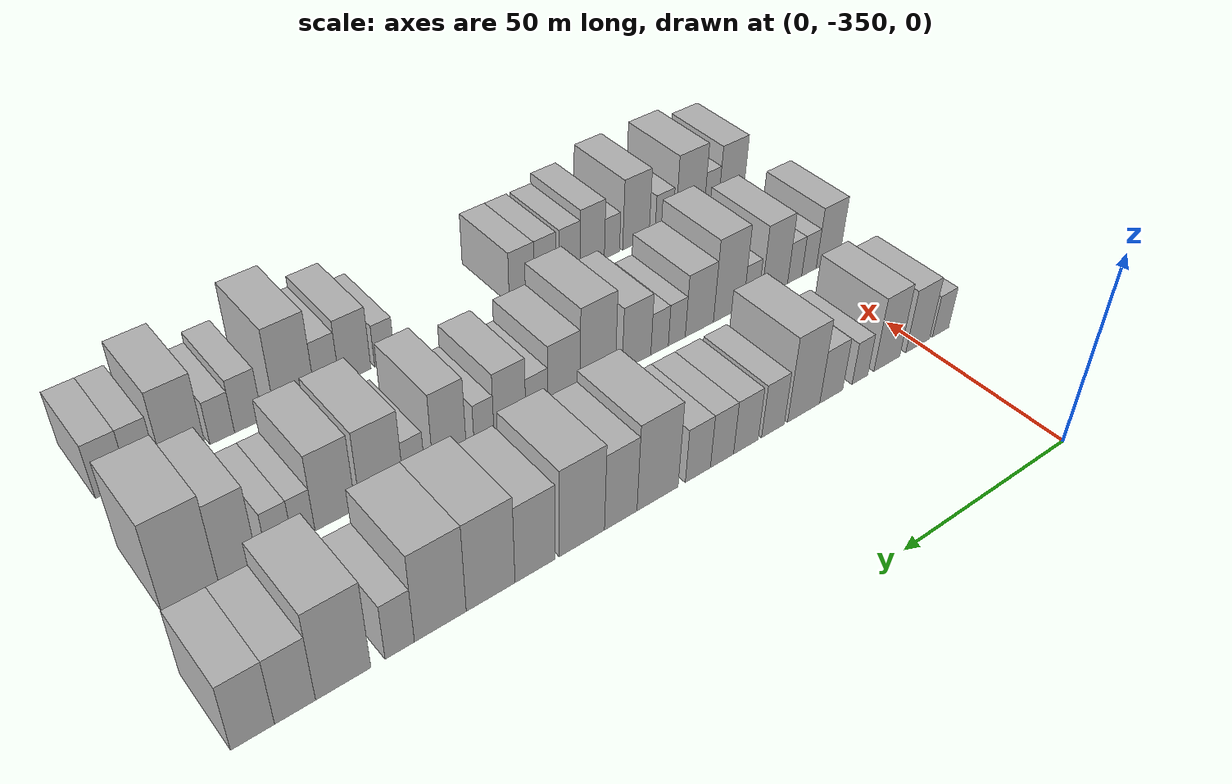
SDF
<sdf version="1.6">
 <world name="default">
  <model name="building_1">
   <static>1</static>
   <pose>50.0000 -357.1473 0 0.000000 0.000000 0.000000</pose>
   <link name="link">
    <pose>0 0 6.00 0 0 0</pose>
    <collision name="collision"><geometry><box><size>20.0000 5.7055 12.0000</size></box></geometry></collision>
    <visual name="visual">
     <cast_shadows>0</cast_shadows>
     <geometry><box><size>20.0000 5.7055 12.0000</size></box></geometry>
     <material>
      <script>
       <uri>model://HANNAS_wall/materials/scripts</uri>
       <uri>model://HANNAS_wall/materials/textures</uri>
       <name>vrc/HANNAS_wall</name>
      </script>
     </material>
    </visual>
   </link>
  </model>
  <model name="building_2">
   <static>1</static>
   <pose>50.0000 -349.2135 0 0.000000 0.000000 0.000000</pose>
   <link name="link">
    <pose>0 0 9.00 0 0 0</pose>
    <collision name="collision"><geometry><box><size>20.0000 8.1621 18.0000</size></box></geometry></collision>
    <visual name="visual">
     <cast_shadows>0</cast_shadows>
     <geometry><box><size>20.0000 8.1621 18.0000</size></box></geometry>
     <material>
      <script>
       <uri>model://HANNAS_wall/materials/scripts</uri>
       <uri>model://HANNAS_wall/materials/textures</uri>
       <name>vrc/HANNAS_wall</name>
      </script>
     </material>
    </visual>
   </link>
  </model>
  <model name="building_3">
   <static>1</static>
   <pose>50.0000 -338.8269 0 0.000000 0.000000 0.000000</pose>
   <link name="link">
    <pose>0 0 10.50 0 0 0</pose>
    <collision name="collision"><geometry><box><size>20.0000 8.6111 21.0000</size></box></geometry></collision>
    <visual name="visual">
     <cast_shadows>0</cast_shadows>
     <geometry><box><size>20.0000 8.6111 21.0000</size></box></geometry>
     <material>
      <script>
       <uri>model://HANNAS_wall/materials/scripts</uri>
       <uri>model://HANNAS_wall/materials/textures</uri>
       <name>vrc/HANNAS_wall</name>
      </script>
     </material>
    </visual>
   </link>
  </model>
  <model name="building_4">
   <static>1</static>
   <pose>50.0000 -329.9672 0 0.000000 0.000000 0.000000</pose>
   <link name="link">
    <pose>0 0 6.00 0 0 0</pose>
    <collision name="collision"><geometry><box><size>20.0000 5.1084 12.0000</size></box></geometry></collision>
    <visual name="visual">
     <cast_shadows>0</cast_shadows>
     <geometry><box><size>20.0000 5.1084 12.0000</size></box></geometry>
     <material>
      <script>
       <uri>model://HANNAS_wall/materials/scripts</uri>
       <uri>model://HANNAS_wall/materials/textures</uri>
       <name>vrc/HANNAS_wall</name>
      </script>
     </material>
    </visual>
   </link>
  </model>
  <model name="building_5">
   <static>1</static>
   <pose>50.0000 -320.7984 0 0.000000 0.000000 0.000000</pose>
   <link name="link">
    <pose>0 0 7.50 0 0 0</pose>
    <collision name="collision"><geometry><box><size>20.0000 7.2293 15.0000</size></box></geometry></collision>
    <visual name="visual">
     <cast_shadows>0</cast_shadows>
     <geometry><box><size>20.0000 7.2293 15.0000</size></box></geometry>
     <material>
      <script>
       <uri>model://HANNAS_wall/materials/scripts</uri>
       <uri>model://HANNAS_wall/materials/textures</uri>
       <name>vrc/HANNAS_wall</name>
      </script>
     </material>
    </visual>
   </link>
  </model>
  <model name="building_6">
   <static>1</static>
   <pose>50.0000 -312.2470 0 0.000000 0.000000 0.000000</pose>
   <link name="link">
    <pose>0 0 12.00 0 0 0</pose>
    <collision name="collision"><geometry><box><size>20.0000 9.8735 24.0000</size></box></geometry></collision>
    <visual name="visual">
     <cast_shadows>0</cast_shadows>
     <geometry><box><size>20.0000 9.8735 24.0000</size></box></geometry>
     <material>
      <script>
       <uri>model://HANNAS_wall/materials/scripts</uri>
       <uri>model://HANNAS_wall/materials/textures</uri>
       <name>vrc/HANNAS_wall</name>
      </script>
     </material>
    </visual>
   </link>
  </model>
  <model name="building_7">
   <static>1</static>
   <pose>50.0000 -302.9227 0 0.000000 0.000000 0.000000</pose>
   <link name="link">
    <pose>0 0 7.50 0 0 0</pose>
    <collision name="collision"><geometry><box><size>20.0000 6.7750 15.0000</size></box></geometry></collision>
    <visual name="visual">
     <cast_shadows>0</cast_shadows>
     <geometry><box><size>20.0000 6.7750 15.0000</size></box></geometry>
     <material>
      <script>
       <uri>model://HANNAS_wall/materials/scripts</uri>
       <uri>model://HANNAS_wall/materials/textures</uri>
       <name>vrc/HANNAS_wall</name>
      </script>
     </material>
    </visual>
   </link>
  </model>
  <model name="building_8">
   <static>1</static>
   <pose>50.0000 -294.9445 0 0.000000 0.000000 0.000000</pose>
   <link name="link">
    <pose>0 0 7.50 0 0 0</pose>
    <collision name="collision"><geometry><box><size>20.0000 7.1815 15.0000</size></box></geometry></collision>
    <visual name="visual">
     <cast_shadows>0</cast_shadows>
     <geometry><box><size>20.0000 7.1815 15.0000</size></box></geometry>
     <material>
      <script>
       <uri>model://HANNAS_wall/materials/scripts</uri>
       <uri>model://HANNAS_wall/materials/textures</uri>
       <name>vrc/HANNAS_wall</name>
      </script>
     </material>
    </visual>
   </link>
  </model>
  <model name="building_9">
   <static>1</static>
   <pose>50.0000 -288.0629 0 0.000000 0.000000 0.000000</pose>
   <link name="link">
    <pose>0 0 7.50 0 0 0</pose>
    <collision name="collision"><geometry><box><size>20.0000 6.5817 15.0000</size></box></geometry></collision>
    <visual name="visual">
     <cast_shadows>0</cast_shadows>
     <geometry><box><size>20.0000 6.5817 15.0000</size></box></geometry>
     <material>
      <script>
       <uri>model://HANNAS_wall/materials/scripts</uri>
       <uri>model://HANNAS_wall/materials/textures</uri>
       <name>vrc/HANNAS_wall</name>
      </script>
     </material>
    </visual>
   </link>
  </model>
  <model name="building_10">
   <static>1</static>
   <pose>50.0000 -281.2849 0 0.000000 0.000000 0.000000</pose>
   <link name="link">
    <pose>0 0 7.50 0 0 0</pose>
    <collision name="collision"><geometry><box><size>20.0000 6.9745 15.0000</size></box></geometry></collision>
    <visual name="visual">
     <cast_shadows>0</cast_shadows>
     <geometry><box><size>20.0000 6.9745 15.0000</size></box></geometry>
     <material>
      <script>
       <uri>model://HANNAS_wall/materials/scripts</uri>
       <uri>model://HANNAS_wall/materials/textures</uri>
       <name>vrc/HANNAS_wall</name>
      </script>
     </material>
    </visual>
   </link>
  </model>
  <model name="building_11">
   <static>1</static>
   <pose>50.0000 -270.2725 0 0.000000 0.000000 0.000000</pose>
   <link name="link">
    <pose>0 0 12.00 0 0 0</pose>
    <collision name="collision"><geometry><box><size>20.0000 11.0504 24.0000</size></box></geometry></collision>
    <visual name="visual">
     <cast_shadows>0</cast_shadows>
     <geometry><box><size>20.0000 11.0504 24.0000</size></box></geometry>
     <material>
      <script>
       <uri>model://HANNAS_wall/materials/scripts</uri>
       <uri>model://HANNAS_wall/materials/textures</uri>
       <name>vrc/HANNAS_wall</name>
      </script>
     </material>
    </visual>
   </link>
  </model>
  <model name="building_12">
   <static>1</static>
   <pose>50.0000 -260.5234 0 0.000000 0.000000 0.000000</pose>
   <link name="link">
    <pose>0 0 10.50 0 0 0</pose>
    <collision name="collision"><geometry><box><size>20.0000 8.4478 21.0000</size></box></geometry></collision>
    <visual name="visual">
     <cast_shadows>0</cast_shadows>
     <geometry><box><size>20.0000 8.4478 21.0000</size></box></geometry>
     <material>
      <script>
       <uri>model://HANNAS_wall/materials/scripts</uri>
       <uri>model://HANNAS_wall/materials/textures</uri>
       <name>vrc/HANNAS_wall</name>
      </script>
     </material>
    </visual>
   </link>
  </model>
  <model name="building_13">
   <static>1</static>
   <pose>50.0000 -250.6275 0 0.000000 0.000000 0.000000</pose>
   <link name="link">
    <pose>0 0 12.00 0 0 0</pose>
    <collision name="collision"><geometry><box><size>20.0000 11.3440 24.0000</size></box></geometry></collision>
    <visual name="visual">
     <cast_shadows>0</cast_shadows>
     <geometry><box><size>20.0000 11.3440 24.0000</size></box></geometry>
     <material>
      <script>
       <uri>model://HANNAS_wall/materials/scripts</uri>
       <uri>model://HANNAS_wall/materials/textures</uri>
       <name>vrc/HANNAS_wall</name>
      </script>
     </material>
    </visual>
   </link>
  </model>
  <model name="building_14">
   <static>1</static>
   <pose>50.0000 -239.0872 0 0.000000 0.000000 0.000000</pose>
   <link name="link">
    <pose>0 0 10.50 0 0 0</pose>
    <collision name="collision"><geometry><box><size>20.0000 9.7365 21.0000</size></box></geometry></collision>
    <visual name="visual">
     <cast_shadows>0</cast_shadows>
     <geometry><box><size>20.0000 9.7365 21.0000</size></box></geometry>
     <material>
      <script>
       <uri>model://HANNAS_wall/materials/scripts</uri>
       <uri>model://HANNAS_wall/materials/textures</uri>
       <name>vrc/HANNAS_wall</name>
      </script>
     </material>
    </visual>
   </link>
  </model>
  <model name="building_15">
   <static>1</static>
   <pose>50.0000 -228.5402 0 0.000000 0.000000 0.000000</pose>
   <link name="link">
    <pose>0 0 12.00 0 0 0</pose>
    <collision name="collision"><geometry><box><size>20.0000 11.3576 24.0000</size></box></geometry></collision>
    <visual name="visual">
     <cast_shadows>0</cast_shadows>
     <geometry><box><size>20.0000 11.3576 24.0000</size></box></geometry>
     <material>
      <script>
       <uri>model://HANNAS_wall/materials/scripts</uri>
       <uri>model://HANNAS_wall/materials/textures</uri>
       <name>vrc/HANNAS_wall</name>
      </script>
     </material>
    </visual>
   </link>
  </model>
  <model name="building_16">
   <static>1</static>
   <pose>50.0000 -217.0679 0 0.000000 0.000000 0.000000</pose>
   <link name="link">
    <pose>0 0 12.00 0 0 0</pose>
    <collision name="collision"><geometry><box><size>20.0000 11.5871 24.0000</size></box></geometry></collision>
    <visual name="visual">
     <cast_shadows>0</cast_shadows>
     <geometry><box><size>20.0000 11.5871 24.0000</size></box></geometry>
     <material>
      <script>
       <uri>model://HANNAS_wall/materials/scripts</uri>
       <uri>model://HANNAS_wall/materials/textures</uri>
       <name>vrc/HANNAS_wall</name>
      </script>
     </material>
    </visual>
   </link>
  </model>
  <model name="building_17">
   <static>1</static>
   <pose>50.0000 -208.0867 0 0.000000 0.000000 0.000000</pose>
   <link name="link">
    <pose>0 0 7.50 0 0 0</pose>
    <collision name="collision"><geometry><box><size>20.0000 6.3753 15.0000</size></box></geometry></collision>
    <visual name="visual">
     <cast_shadows>0</cast_shadows>
     <geometry><box><size>20.0000 6.3753 15.0000</size></box></geometry>
     <material>
      <script>
       <uri>model://HANNAS_wall/materials/scripts</uri>
       <uri>model://HANNAS_wall/materials/textures</uri>
       <name>vrc/HANNAS_wall</name>
      </script>
     </material>
    </visual>
   </link>
  </model>
  <model name="building_18">
   <static>1</static>
   <pose>50.0000 -196.1646 0 0.000000 0.000000 0.000000</pose>
   <link name="link">
    <pose>0 0 12.00 0 0 0</pose>
    <collision name="collision"><geometry><box><size>20.0000 11.4688 24.0000</size></box></geometry></collision>
    <visual name="visual">
     <cast_shadows>0</cast_shadows>
     <geometry><box><size>20.0000 11.4688 24.0000</size></box></geometry>
     <material>
      <script>
       <uri>model://HANNAS_wall/materials/scripts</uri>
       <uri>model://HANNAS_wall/materials/textures</uri>
       <name>vrc/HANNAS_wall</name>
      </script>
     </material>
    </visual>
   </link>
  </model>
  <model name="building_19">
   <static>1</static>
   <pose>50.0000 -186.3429 0 0.000000 0.000000 0.000000</pose>
   <link name="link">
    <pose>0 0 9.00 0 0 0</pose>
    <collision name="collision"><geometry><box><size>20.0000 8.1747 18.0000</size></box></geometry></collision>
    <visual name="visual">
     <cast_shadows>0</cast_shadows>
     <geometry><box><size>20.0000 8.1747 18.0000</size></box></geometry>
     <material>
      <script>
       <uri>model://HANNAS_wall/materials/scripts</uri>
       <uri>model://HANNAS_wall/materials/textures</uri>
       <name>vrc/HANNAS_wall</name>
      </script>
     </material>
    </visual>
   </link>
  </model>
  <model name="building_20">
   <static>1</static>
   <pose>50.0000 -177.9876 0 0.000000 0.000000 0.000000</pose>
   <link name="link">
    <pose>0 0 9.00 0 0 0</pose>
    <collision name="collision"><geometry><box><size>20.0000 8.5359 18.0000</size></box></geometry></collision>
    <visual name="visual">
     <cast_shadows>0</cast_shadows>
     <geometry><box><size>20.0000 8.5359 18.0000</size></box></geometry>
     <material>
      <script>
       <uri>model://HANNAS_wall/materials/scripts</uri>
       <uri>model://HANNAS_wall/materials/textures</uri>
       <name>vrc/HANNAS_wall</name>
      </script>
     </material>
    </visual>
   </link>
  </model>
  <model name="building_84">
   <static>1</static>
   <pose>85.0000 -355.8267 0 0.000000 0.000000 0.000000</pose>
   <link name="link">
    <pose>0 0 9.00 0 0 0</pose>
    <collision name="collision"><geometry><box><size>20.0000 8.3467 18.0000</size></box></geometry></collision>
    <visual name="visual">
     <cast_shadows>0</cast_shadows>
     <geometry><box><size>20.0000 8.3467 18.0000</size></box></geometry>
     <material>
      <script>
       <uri>model://HANNAS_wall/materials/scripts</uri>
       <uri>model://HANNAS_wall/materials/textures</uri>
       <name>vrc/HANNAS_wall</name>
      </script>
     </material>
    </visual>
   </link>
  </model>
  <model name="building_85">
   <static>1</static>
   <pose>85.0000 -349.1430 0 0.000000 0.000000 0.000000</pose>
   <link name="link">
    <pose>0 0 6.00 0 0 0</pose>
    <collision name="collision"><geometry><box><size>20.0000 5.0207 12.0000</size></box></geometry></collision>
    <visual name="visual">
     <cast_shadows>0</cast_shadows>
     <geometry><box><size>20.0000 5.0207 12.0000</size></box></geometry>
     <material>
      <script>
       <uri>model://HANNAS_wall/materials/scripts</uri>
       <uri>model://HANNAS_wall/materials/textures</uri>
       <name>vrc/HANNAS_wall</name>
      </script>
     </material>
    </visual>
   </link>
  </model>
  <model name="building_86">
   <static>1</static>
   <pose>85.0000 -344.2214 0 0.000000 0.000000 0.000000</pose>
   <link name="link">
    <pose>0 0 6.00 0 0 0</pose>
    <collision name="collision"><geometry><box><size>20.0000 4.8224 12.0000</size></box></geometry></collision>
    <visual name="visual">
     <cast_shadows>0</cast_shadows>
     <geometry><box><size>20.0000 4.8224 12.0000</size></box></geometry>
     <material>
      <script>
       <uri>model://HANNAS_wall/materials/scripts</uri>
       <uri>model://HANNAS_wall/materials/textures</uri>
       <name>vrc/HANNAS_wall</name>
      </script>
     </material>
    </visual>
   </link>
  </model>
  <model name="building_87">
   <static>1</static>
   <pose>85.0000 -337.4208 0 0.000000 0.000000 0.000000</pose>
   <link name="link">
    <pose>0 0 10.50 0 0 0</pose>
    <collision name="collision"><geometry><box><size>20.0000 8.7788 21.0000</size></box></geometry></collision>
    <visual name="visual">
     <cast_shadows>0</cast_shadows>
     <geometry><box><size>20.0000 8.7788 21.0000</size></box></geometry>
     <material>
      <script>
       <uri>model://HANNAS_wall/materials/scripts</uri>
       <uri>model://HANNAS_wall/materials/textures</uri>
       <name>vrc/HANNAS_wall</name>
      </script>
     </material>
    </visual>
   </link>
  </model>
  <model name="building_88">
   <static>1</static>
   <pose>85.0000 -329.5567 0 0.000000 0.000000 0.000000</pose>
   <link name="link">
    <pose>0 0 6.00 0 0 0</pose>
    <collision name="collision"><geometry><box><size>20.0000 4.9494 12.0000</size></box></geometry></collision>
    <visual name="visual">
     <cast_shadows>0</cast_shadows>
     <geometry><box><size>20.0000 4.9494 12.0000</size></box></geometry>
     <material>
      <script>
       <uri>model://HANNAS_wall/materials/scripts</uri>
       <uri>model://HANNAS_wall/materials/textures</uri>
       <name>vrc/HANNAS_wall</name>
      </script>
     </material>
    </visual>
   </link>
  </model>
  <model name="building_89">
   <static>1</static>
   <pose>85.0000 -322.2527 0 0.000000 0.000000 0.000000</pose>
   <link name="link">
    <pose>0 0 12.00 0 0 0</pose>
    <collision name="collision"><geometry><box><size>20.0000 9.6586 24.0000</size></box></geometry></collision>
    <visual name="visual">
     <cast_shadows>0</cast_shadows>
     <geometry><box><size>20.0000 9.6586 24.0000</size></box></geometry>
     <material>
      <script>
       <uri>model://HANNAS_wall/materials/scripts</uri>
       <uri>model://HANNAS_wall/materials/textures</uri>
       <name>vrc/HANNAS_wall</name>
      </script>
     </material>
    </visual>
   </link>
  </model>
  <model name="building_90">
   <static>1</static>
   <pose>85.0000 -313.0131 0 0.000000 0.000000 0.000000</pose>
   <link name="link">
    <pose>0 0 9.00 0 0 0</pose>
    <collision name="collision"><geometry><box><size>20.0000 8.8206 18.0000</size></box></geometry></collision>
    <visual name="visual">
     <cast_shadows>0</cast_shadows>
     <geometry><box><size>20.0000 8.8206 18.0000</size></box></geometry>
     <material>
      <script>
       <uri>model://HANNAS_wall/materials/scripts</uri>
       <uri>model://HANNAS_wall/materials/textures</uri>
       <name>vrc/HANNAS_wall</name>
      </script>
     </material>
    </visual>
   </link>
  </model>
  <model name="building_91">
   <static>1</static>
   <pose>85.0000 -305.9966 0 0.000000 0.000000 0.000000</pose>
   <link name="link">
    <pose>0 0 6.00 0 0 0</pose>
    <collision name="collision"><geometry><box><size>20.0000 5.2122 12.0000</size></box></geometry></collision>
    <visual name="visual">
     <cast_shadows>0</cast_shadows>
     <geometry><box><size>20.0000 5.2122 12.0000</size></box></geometry>
     <material>
      <script>
       <uri>model://HANNAS_wall/materials/scripts</uri>
       <uri>model://HANNAS_wall/materials/textures</uri>
       <name>vrc/HANNAS_wall</name>
      </script>
     </material>
    </visual>
   </link>
  </model>
  <model name="building_92">
   <static>1</static>
   <pose>85.0000 -300.7433 0 0.000000 0.000000 0.000000</pose>
   <link name="link">
    <pose>0 0 6.00 0 0 0</pose>
    <collision name="collision"><geometry><box><size>20.0000 5.2944 12.0000</size></box></geometry></collision>
    <visual name="visual">
     <cast_shadows>0</cast_shadows>
     <geometry><box><size>20.0000 5.2944 12.0000</size></box></geometry>
     <material>
      <script>
       <uri>model://HANNAS_wall/materials/scripts</uri>
       <uri>model://HANNAS_wall/materials/textures</uri>
       <name>vrc/HANNAS_wall</name>
      </script>
     </material>
    </visual>
   </link>
  </model>
  <model name="building_93">
   <static>1</static>
   <pose>85.0000 -293.8392 0 0.000000 0.000000 0.000000</pose>
   <link name="link">
    <pose>0 0 9.00 0 0 0</pose>
    <collision name="collision"><geometry><box><size>20.0000 8.5138 18.0000</size></box></geometry></collision>
    <visual name="visual">
     <cast_shadows>0</cast_shadows>
     <geometry><box><size>20.0000 8.5138 18.0000</size></box></geometry>
     <material>
      <script>
       <uri>model://HANNAS_wall/materials/scripts</uri>
       <uri>model://HANNAS_wall/materials/textures</uri>
       <name>vrc/HANNAS_wall</name>
      </script>
     </material>
    </visual>
   </link>
  </model>
  <model name="building_94">
   <static>1</static>
   <pose>85.0000 -282.5141 0 0.000000 0.000000 0.000000</pose>
   <link name="link">
    <pose>0 0 12.00 0 0 0</pose>
    <collision name="collision"><geometry><box><size>20.0000 10.1366 24.0000</size></box></geometry></collision>
    <visual name="visual">
     <cast_shadows>0</cast_shadows>
     <geometry><box><size>20.0000 10.1366 24.0000</size></box></geometry>
     <material>
      <script>
       <uri>model://HANNAS_wall/materials/scripts</uri>
       <uri>model://HANNAS_wall/materials/textures</uri>
       <name>vrc/HANNAS_wall</name>
      </script>
     </material>
    </visual>
   </link>
  </model>
  <model name="building_95">
   <static>1</static>
   <pose>85.0000 -272.9851 0 0.000000 0.000000 0.000000</pose>
   <link name="link">
    <pose>0 0 9.00 0 0 0</pose>
    <collision name="collision"><geometry><box><size>20.0000 8.9213 18.0000</size></box></geometry></collision>
    <visual name="visual">
     <cast_shadows>0</cast_shadows>
     <geometry><box><size>20.0000 8.9213 18.0000</size></box></geometry>
     <material>
      <script>
       <uri>model://HANNAS_wall/materials/scripts</uri>
       <uri>model://HANNAS_wall/materials/textures</uri>
       <name>vrc/HANNAS_wall</name>
      </script>
     </material>
    </visual>
   </link>
  </model>
  <model name="building_96">
   <static>1</static>
   <pose>85.0000 -265.5346 0 0.000000 0.000000 0.000000</pose>
   <link name="link">
    <pose>0 0 6.00 0 0 0</pose>
    <collision name="collision"><geometry><box><size>20.0000 5.9797 12.0000</size></box></geometry></collision>
    <visual name="visual">
     <cast_shadows>0</cast_shadows>
     <geometry><box><size>20.0000 5.9797 12.0000</size></box></geometry>
     <material>
      <script>
       <uri>model://HANNAS_wall/materials/scripts</uri>
       <uri>model://HANNAS_wall/materials/textures</uri>
       <name>vrc/HANNAS_wall</name>
      </script>
     </material>
    </visual>
   </link>
  </model>
  <model name="building_97">
   <static>1</static>
   <pose>85.0000 -258.3247 0 0.000000 0.000000 0.000000</pose>
   <link name="link">
    <pose>0 0 9.00 0 0 0</pose>
    <collision name="collision"><geometry><box><size>20.0000 8.4402 18.0000</size></box></geometry></collision>
    <visual name="visual">
     <cast_shadows>0</cast_shadows>
     <geometry><box><size>20.0000 8.4402 18.0000</size></box></geometry>
     <material>
      <script>
       <uri>model://HANNAS_wall/materials/scripts</uri>
       <uri>model://HANNAS_wall/materials/textures</uri>
       <name>vrc/HANNAS_wall</name>
      </script>
     </material>
    </visual>
   </link>
  </model>
  <model name="building_98">
   <static>1</static>
   <pose>85.0000 -251.5241 0 0.000000 0.000000 0.000000</pose>
   <link name="link">
    <pose>0 0 6.00 0 0 0</pose>
    <collision name="collision"><geometry><box><size>20.0000 5.1610 12.0000</size></box></geometry></collision>
    <visual name="visual">
     <cast_shadows>0</cast_shadows>
     <geometry><box><size>20.0000 5.1610 12.0000</size></box></geometry>
     <material>
      <script>
       <uri>model://HANNAS_wall/materials/scripts</uri>
       <uri>model://HANNAS_wall/materials/textures</uri>
       <name>vrc/HANNAS_wall</name>
      </script>
     </material>
    </visual>
   </link>
  </model>
  <model name="building_99">
   <static>1</static>
   <pose>85.0000 -242.7093 0 0.000000 0.000000 0.000000</pose>
   <link name="link">
    <pose>0 0 10.50 0 0 0</pose>
    <collision name="collision"><geometry><box><size>20.0000 8.4685 21.0000</size></box></geometry></collision>
    <visual name="visual">
     <cast_shadows>0</cast_shadows>
     <geometry><box><size>20.0000 8.4685 21.0000</size></box></geometry>
     <material>
      <script>
       <uri>model://HANNAS_wall/materials/scripts</uri>
       <uri>model://HANNAS_wall/materials/textures</uri>
       <name>vrc/HANNAS_wall</name>
      </script>
     </material>
    </visual>
   </link>
  </model>
  <model name="building_100">
   <static>1</static>
   <pose>85.0000 -233.8208 0 0.000000 0.000000 0.000000</pose>
   <link name="link">
    <pose>0 0 6.00 0 0 0</pose>
    <collision name="collision"><geometry><box><size>20.0000 5.3086 12.0000</size></box></geometry></collision>
    <visual name="visual">
     <cast_shadows>0</cast_shadows>
     <geometry><box><size>20.0000 5.3086 12.0000</size></box></geometry>
     <material>
      <script>
       <uri>model://HANNAS_wall/materials/scripts</uri>
       <uri>model://HANNAS_wall/materials/textures</uri>
       <name>vrc/HANNAS_wall</name>
      </script>
     </material>
    </visual>
   </link>
  </model>
  <model name="building_101">
   <static>1</static>
   <pose>85.0000 -225.9499 0 0.000000 0.000000 0.000000</pose>
   <link name="link">
    <pose>0 0 10.50 0 0 0</pose>
    <collision name="collision"><geometry><box><size>20.0000 10.4331 21.0000</size></box></geometry></collision>
    <visual name="visual">
     <cast_shadows>0</cast_shadows>
     <geometry><box><size>20.0000 10.4331 21.0000</size></box></geometry>
     <material>
      <script>
       <uri>model://HANNAS_wall/materials/scripts</uri>
       <uri>model://HANNAS_wall/materials/textures</uri>
       <name>vrc/HANNAS_wall</name>
      </script>
     </material>
    </visual>
   </link>
  </model>
  <model name="building_102">
   <static>1</static>
   <pose>85.0000 -215.0166 0 0.000000 0.000000 0.000000</pose>
   <link name="link">
    <pose>0 0 10.50 0 0 0</pose>
    <collision name="collision"><geometry><box><size>20.0000 9.4335 21.0000</size></box></geometry></collision>
    <visual name="visual">
     <cast_shadows>0</cast_shadows>
     <geometry><box><size>20.0000 9.4335 21.0000</size></box></geometry>
     <material>
      <script>
       <uri>model://HANNAS_wall/materials/scripts</uri>
       <uri>model://HANNAS_wall/materials/textures</uri>
       <name>vrc/HANNAS_wall</name>
      </script>
     </material>
    </visual>
   </link>
  </model>
  <model name="building_103">
   <static>1</static>
   <pose>85.0000 -207.7648 0 0.000000 0.000000 0.000000</pose>
   <link name="link">
    <pose>0 0 6.00 0 0 0</pose>
    <collision name="collision"><geometry><box><size>20.0000 5.0701 12.0000</size></box></geometry></collision>
    <visual name="visual">
     <cast_shadows>0</cast_shadows>
     <geometry><box><size>20.0000 5.0701 12.0000</size></box></geometry>
     <material>
      <script>
       <uri>model://HANNAS_wall/materials/scripts</uri>
       <uri>model://HANNAS_wall/materials/textures</uri>
       <name>vrc/HANNAS_wall</name>
      </script>
     </material>
    </visual>
   </link>
  </model>
  <model name="building_104">
   <static>1</static>
   <pose>85.0000 -202.3518 0 0.000000 0.000000 0.000000</pose>
   <link name="link">
    <pose>0 0 6.00 0 0 0</pose>
    <collision name="collision"><geometry><box><size>20.0000 5.7560 12.0000</size></box></geometry></collision>
    <visual name="visual">
     <cast_shadows>0</cast_shadows>
     <geometry><box><size>20.0000 5.7560 12.0000</size></box></geometry>
     <material>
      <script>
       <uri>model://HANNAS_wall/materials/scripts</uri>
       <uri>model://HANNAS_wall/materials/textures</uri>
       <name>vrc/HANNAS_wall</name>
      </script>
     </material>
    </visual>
   </link>
  </model>
  <model name="building_105">
   <static>1</static>
   <pose>85.0000 -193.2441 0 0.000000 0.000000 0.000000</pose>
   <link name="link">
    <pose>0 0 10.50 0 0 0</pose>
    <collision name="collision"><geometry><box><size>20.0000 8.4593 21.0000</size></box></geometry></collision>
    <visual name="visual">
     <cast_shadows>0</cast_shadows>
     <geometry><box><size>20.0000 8.4593 21.0000</size></box></geometry>
     <material>
      <script>
       <uri>model://HANNAS_wall/materials/scripts</uri>
       <uri>model://HANNAS_wall/materials/textures</uri>
       <name>vrc/HANNAS_wall</name>
      </script>
     </material>
    </visual>
   </link>
  </model>
  <model name="building_106">
   <static>1</static>
   <pose>85.0000 -183.0956 0 0.000000 0.000000 0.000000</pose>
   <link name="link">
    <pose>0 0 12.00 0 0 0</pose>
    <collision name="collision"><geometry><box><size>20.0000 11.8378 24.0000</size></box></geometry></collision>
    <visual name="visual">
     <cast_shadows>0</cast_shadows>
     <geometry><box><size>20.0000 11.8378 24.0000</size></box></geometry>
     <material>
      <script>
       <uri>model://HANNAS_wall/materials/scripts</uri>
       <uri>model://HANNAS_wall/materials/textures</uri>
       <name>vrc/HANNAS_wall</name>
      </script>
     </material>
    </visual>
   </link>
  </model>
  <model name="building_168">
   <static>1</static>
   <pose>120.0000 -355.5135 0 0.000000 0.000000 0.000000</pose>
   <link name="link">
    <pose>0 0 9.00 0 0 0</pose>
    <collision name="collision"><geometry><box><size>20.0000 8.9730 18.0000</size></box></geometry></collision>
    <visual name="visual">
     <cast_shadows>0</cast_shadows>
     <geometry><box><size>20.0000 8.9730 18.0000</size></box></geometry>
     <material>
      <script>
       <uri>model://HANNAS_wall/materials/scripts</uri>
       <uri>model://HANNAS_wall/materials/textures</uri>
       <name>vrc/HANNAS_wall</name>
      </script>
     </material>
    </visual>
   </link>
  </model>
  <model name="building_169">
   <static>1</static>
   <pose>120.0000 -348.4965 0 0.000000 0.000000 0.000000</pose>
   <link name="link">
    <pose>0 0 6.00 0 0 0</pose>
    <collision name="collision"><geometry><box><size>20.0000 5.0609 12.0000</size></box></geometry></collision>
    <visual name="visual">
     <cast_shadows>0</cast_shadows>
     <geometry><box><size>20.0000 5.0609 12.0000</size></box></geometry>
     <material>
      <script>
       <uri>model://HANNAS_wall/materials/scripts</uri>
       <uri>model://HANNAS_wall/materials/textures</uri>
       <name>vrc/HANNAS_wall</name>
      </script>
     </material>
    </visual>
   </link>
  </model>
  <model name="building_170">
   <static>1</static>
   <pose>120.0000 -341.0421 0 0.000000 0.000000 0.000000</pose>
   <link name="link">
    <pose>0 0 10.50 0 0 0</pose>
    <collision name="collision"><geometry><box><size>20.0000 9.8479 21.0000</size></box></geometry></collision>
    <visual name="visual">
     <cast_shadows>0</cast_shadows>
     <geometry><box><size>20.0000 9.8479 21.0000</size></box></geometry>
     <material>
      <script>
       <uri>model://HANNAS_wall/materials/scripts</uri>
       <uri>model://HANNAS_wall/materials/textures</uri>
       <name>vrc/HANNAS_wall</name>
      </script>
     </material>
    </visual>
   </link>
  </model>
  <model name="building_171">
   <static>1</static>
   <pose>120.0000 -332.1388 0 0.000000 0.000000 0.000000</pose>
   <link name="link">
    <pose>0 0 6.00 0 0 0</pose>
    <collision name="collision"><geometry><box><size>20.0000 5.9588 12.0000</size></box></geometry></collision>
    <visual name="visual">
     <cast_shadows>0</cast_shadows>
     <geometry><box><size>20.0000 5.9588 12.0000</size></box></geometry>
     <material>
      <script>
       <uri>model://HANNAS_wall/materials/scripts</uri>
       <uri>model://HANNAS_wall/materials/textures</uri>
       <name>vrc/HANNAS_wall</name>
      </script>
     </material>
    </visual>
   </link>
  </model>
  <model name="building_172">
   <static>1</static>
   <pose>120.0000 -322.8219 0 0.000000 0.000000 0.000000</pose>
   <link name="link">
    <pose>0 0 10.50 0 0 0</pose>
    <collision name="collision"><geometry><box><size>20.0000 8.6749 21.0000</size></box></geometry></collision>
    <visual name="visual">
     <cast_shadows>0</cast_shadows>
     <geometry><box><size>20.0000 8.6749 21.0000</size></box></geometry>
     <material>
      <script>
       <uri>model://HANNAS_wall/materials/scripts</uri>
       <uri>model://HANNAS_wall/materials/textures</uri>
       <name>vrc/HANNAS_wall</name>
      </script>
     </material>
    </visual>
   </link>
  </model>
  <model name="building_173">
   <static>1</static>
   <pose>120.0000 -315.0374 0 0.000000 0.000000 0.000000</pose>
   <link name="link">
    <pose>0 0 6.00 0 0 0</pose>
    <collision name="collision"><geometry><box><size>20.0000 4.8941 12.0000</size></box></geometry></collision>
    <visual name="visual">
     <cast_shadows>0</cast_shadows>
     <geometry><box><size>20.0000 4.8941 12.0000</size></box></geometry>
     <material>
      <script>
       <uri>model://HANNAS_wall/materials/scripts</uri>
       <uri>model://HANNAS_wall/materials/textures</uri>
       <name>vrc/HANNAS_wall</name>
      </script>
     </material>
    </visual>
   </link>
  </model>
  <model name="building_174">
   <static>1</static>
   <pose>120.0000 -308.7207 0 0.000000 0.000000 0.000000</pose>
   <link name="link">
    <pose>0 0 9.00 0 0 0</pose>
    <collision name="collision"><geometry><box><size>20.0000 7.7392 18.0000</size></box></geometry></collision>
    <visual name="visual">
     <cast_shadows>0</cast_shadows>
     <geometry><box><size>20.0000 7.7392 18.0000</size></box></geometry>
     <material>
      <script>
       <uri>model://HANNAS_wall/materials/scripts</uri>
       <uri>model://HANNAS_wall/materials/textures</uri>
       <name>vrc/HANNAS_wall</name>
      </script>
     </material>
    </visual>
   </link>
  </model>
  <model name="building_175">
   <static>1</static>
   <pose>120.0000 -301.5886 0 0.000000 0.000000 0.000000</pose>
   <link name="link">
    <pose>0 0 7.50 0 0 0</pose>
    <collision name="collision"><geometry><box><size>20.0000 6.5250 15.0000</size></box></geometry></collision>
    <visual name="visual">
     <cast_shadows>0</cast_shadows>
     <geometry><box><size>20.0000 6.5250 15.0000</size></box></geometry>
     <material>
      <script>
       <uri>model://HANNAS_wall/materials/scripts</uri>
       <uri>model://HANNAS_wall/materials/textures</uri>
       <name>vrc/HANNAS_wall</name>
      </script>
     </material>
    </visual>
   </link>
  </model>
  <model name="building_176">
   <static>1</static>
   <pose>120.0000 -294.0527 0 0.000000 0.000000 0.000000</pose>
   <link name="link">
    <pose>0 0 7.50 0 0 0</pose>
    <collision name="collision"><geometry><box><size>20.0000 6.5470 15.0000</size></box></geometry></collision>
    <visual name="visual">
     <cast_shadows>0</cast_shadows>
     <geometry><box><size>20.0000 6.5470 15.0000</size></box></geometry>
     <material>
      <script>
       <uri>model://HANNAS_wall/materials/scripts</uri>
       <uri>model://HANNAS_wall/materials/textures</uri>
       <name>vrc/HANNAS_wall</name>
      </script>
     </material>
    </visual>
   </link>
  </model>
  <model name="building_177">
   <static>1</static>
   <pose>120.0000 -287.0748 0 0.000000 0.000000 0.000000</pose>
   <link name="link">
    <pose>0 0 7.50 0 0 0</pose>
    <collision name="collision"><geometry><box><size>20.0000 7.4088 15.0000</size></box></geometry></collision>
    <visual name="visual">
     <cast_shadows>0</cast_shadows>
     <geometry><box><size>20.0000 7.4088 15.0000</size></box></geometry>
     <material>
      <script>
       <uri>model://HANNAS_wall/materials/scripts</uri>
       <uri>model://HANNAS_wall/materials/textures</uri>
       <name>vrc/HANNAS_wall</name>
      </script>
     </material>
    </visual>
   </link>
  </model>
  <model name="building_178">
   <static>1</static>
   <pose>120.0000 -248.3997 0 0.000000 0.000000 0.000000</pose>
   <link name="link">
    <pose>0 0 6.00 0 0 0</pose>
    <collision name="collision"><geometry><box><size>20.0000 5.3138 12.0000</size></box></geometry></collision>
    <visual name="visual">
     <cast_shadows>0</cast_shadows>
     <geometry><box><size>20.0000 5.3138 12.0000</size></box></geometry>
     <material>
      <script>
       <uri>model://HANNAS_wall/materials/scripts</uri>
       <uri>model://HANNAS_wall/materials/textures</uri>
       <name>vrc/HANNAS_wall</name>
      </script>
     </material>
    </visual>
   </link>
  </model>
  <model name="building_179">
   <static>1</static>
   <pose>120.0000 -240.6493 0 0.000000 0.000000 0.000000</pose>
   <link name="link">
    <pose>0 0 9.00 0 0 0</pose>
    <collision name="collision"><geometry><box><size>20.0000 8.1869 18.0000</size></box></geometry></collision>
    <visual name="visual">
     <cast_shadows>0</cast_shadows>
     <geometry><box><size>20.0000 8.1869 18.0000</size></box></geometry>
     <material>
      <script>
       <uri>model://HANNAS_wall/materials/scripts</uri>
       <uri>model://HANNAS_wall/materials/textures</uri>
       <name>vrc/HANNAS_wall</name>
      </script>
     </material>
    </visual>
   </link>
  </model>
  <model name="building_180">
   <static>1</static>
   <pose>120.0000 -233.4347 0 0.000000 0.000000 0.000000</pose>
   <link name="link">
    <pose>0 0 7.50 0 0 0</pose>
    <collision name="collision"><geometry><box><size>20.0000 6.2424 15.0000</size></box></geometry></collision>
    <visual name="visual">
     <cast_shadows>0</cast_shadows>
     <geometry><box><size>20.0000 6.2424 15.0000</size></box></geometry>
     <material>
      <script>
       <uri>model://HANNAS_wall/materials/scripts</uri>
       <uri>model://HANNAS_wall/materials/textures</uri>
       <name>vrc/HANNAS_wall</name>
      </script>
     </material>
    </visual>
   </link>
  </model>
  <model name="building_181">
   <static>1</static>
   <pose>120.0000 -225.2839 0 0.000000 0.000000 0.000000</pose>
   <link name="link">
    <pose>0 0 12.00 0 0 0</pose>
    <collision name="collision"><geometry><box><size>20.0000 10.0592 24.0000</size></box></geometry></collision>
    <visual name="visual">
     <cast_shadows>0</cast_shadows>
     <geometry><box><size>20.0000 10.0592 24.0000</size></box></geometry>
     <material>
      <script>
       <uri>model://HANNAS_wall/materials/scripts</uri>
       <uri>model://HANNAS_wall/materials/textures</uri>
       <name>vrc/HANNAS_wall</name>
      </script>
     </material>
    </visual>
   </link>
  </model>
  <model name="building_182">
   <static>1</static>
   <pose>120.0000 -213.8916 0 0.000000 0.000000 0.000000</pose>
   <link name="link">
    <pose>0 0 7.50 0 0 0</pose>
    <collision name="collision"><geometry><box><size>20.0000 6.7252 15.0000</size></box></geometry></collision>
    <visual name="visual">
     <cast_shadows>0</cast_shadows>
     <geometry><box><size>20.0000 6.7252 15.0000</size></box></geometry>
     <material>
      <script>
       <uri>model://HANNAS_wall/materials/scripts</uri>
       <uri>model://HANNAS_wall/materials/textures</uri>
       <name>vrc/HANNAS_wall</name>
      </script>
     </material>
    </visual>
   </link>
  </model>
  <model name="building_183">
   <static>1</static>
   <pose>120.0000 -207.6183 0 0.000000 0.000000 0.000000</pose>
   <link name="link">
    <pose>0 0 6.00 0 0 0</pose>
    <collision name="collision"><geometry><box><size>20.0000 5.8215 12.0000</size></box></geometry></collision>
    <visual name="visual">
     <cast_shadows>0</cast_shadows>
     <geometry><box><size>20.0000 5.8215 12.0000</size></box></geometry>
     <material>
      <script>
       <uri>model://HANNAS_wall/materials/scripts</uri>
       <uri>model://HANNAS_wall/materials/textures</uri>
       <name>vrc/HANNAS_wall</name>
      </script>
     </material>
    </visual>
   </link>
  </model>
  <model name="building_184">
   <static>1</static>
   <pose>120.0000 -198.7496 0 0.000000 0.000000 0.000000</pose>
   <link name="link">
    <pose>0 0 10.50 0 0 0</pose>
    <collision name="collision"><geometry><box><size>20.0000 9.9161 21.0000</size></box></geometry></collision>
    <visual name="visual">
     <cast_shadows>0</cast_shadows>
     <geometry><box><size>20.0000 9.9161 21.0000</size></box></geometry>
     <material>
      <script>
       <uri>model://HANNAS_wall/materials/scripts</uri>
       <uri>model://HANNAS_wall/materials/textures</uri>
       <name>vrc/HANNAS_wall</name>
      </script>
     </material>
    </visual>
   </link>
  </model>
  <model name="building_185">
   <static>1</static>
   <pose>120.0000 -189.5536 0 0.000000 0.000000 0.000000</pose>
   <link name="link">
    <pose>0 0 7.50 0 0 0</pose>
    <collision name="collision"><geometry><box><size>20.0000 6.4758 15.0000</size></box></geometry></collision>
    <visual name="visual">
     <cast_shadows>0</cast_shadows>
     <geometry><box><size>20.0000 6.4758 15.0000</size></box></geometry>
     <material>
      <script>
       <uri>model://HANNAS_wall/materials/scripts</uri>
       <uri>model://HANNAS_wall/materials/textures</uri>
       <name>vrc/HANNAS_wall</name>
      </script>
     </material>
    </visual>
   </link>
  </model>
  <model name="building_186">
   <static>1</static>
   <pose>120.0000 -182.6532 0 0.000000 0.000000 0.000000</pose>
   <link name="link">
    <pose>0 0 7.50 0 0 0</pose>
    <collision name="collision"><geometry><box><size>20.0000 7.3251 15.0000</size></box></geometry></collision>
    <visual name="visual">
     <cast_shadows>0</cast_shadows>
     <geometry><box><size>20.0000 7.3251 15.0000</size></box></geometry>
     <material>
      <script>
       <uri>model://HANNAS_wall/materials/scripts</uri>
       <uri>model://HANNAS_wall/materials/textures</uri>
       <name>vrc/HANNAS_wall</name>
      </script>
     </material>
    </visual>
   </link>
  </model>
 </world>
</sdf>
